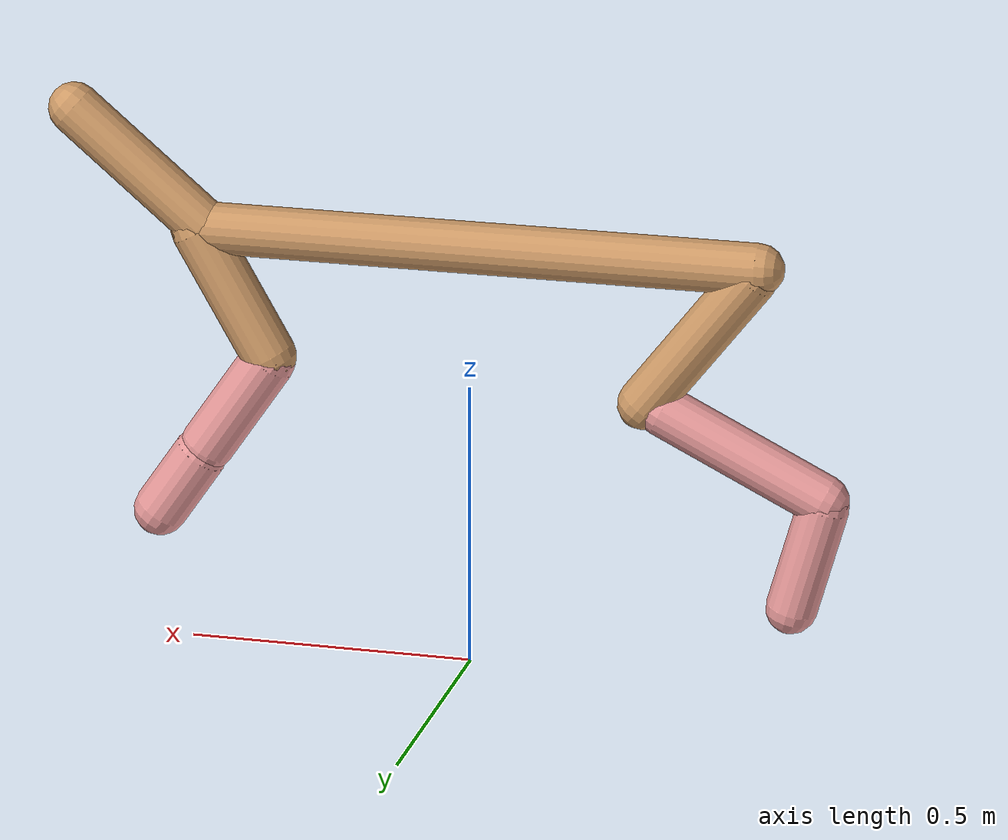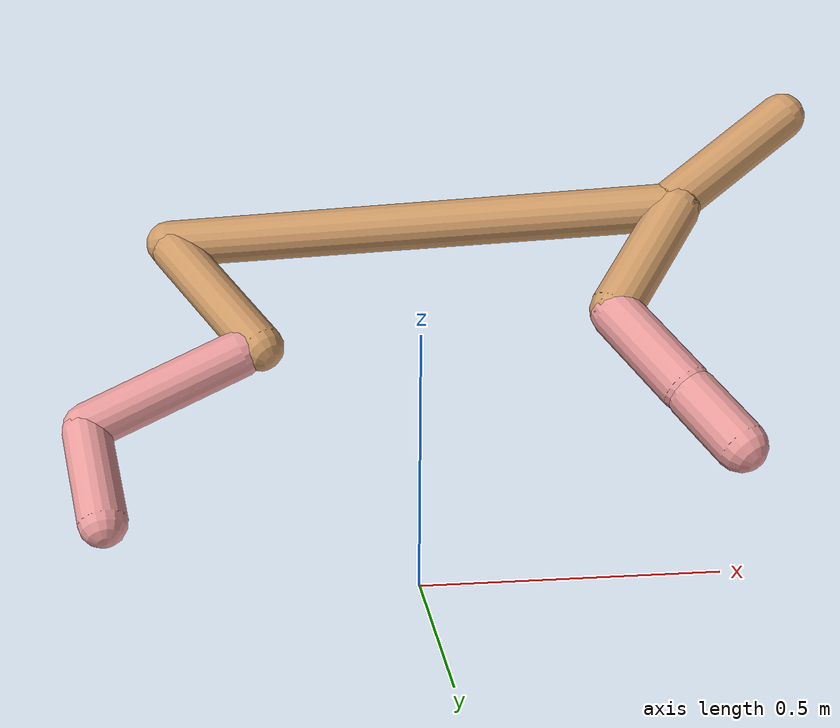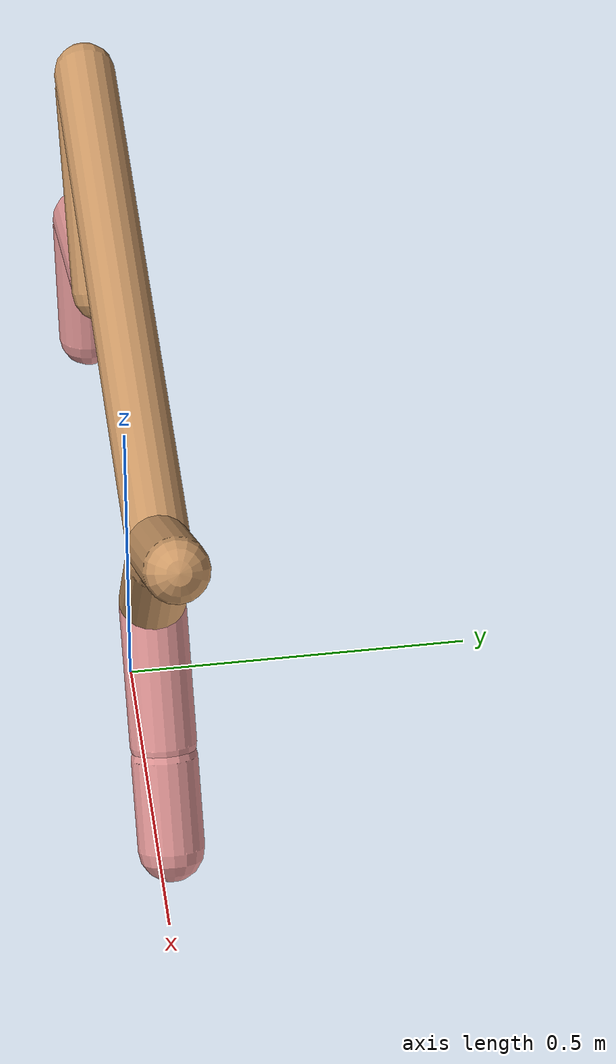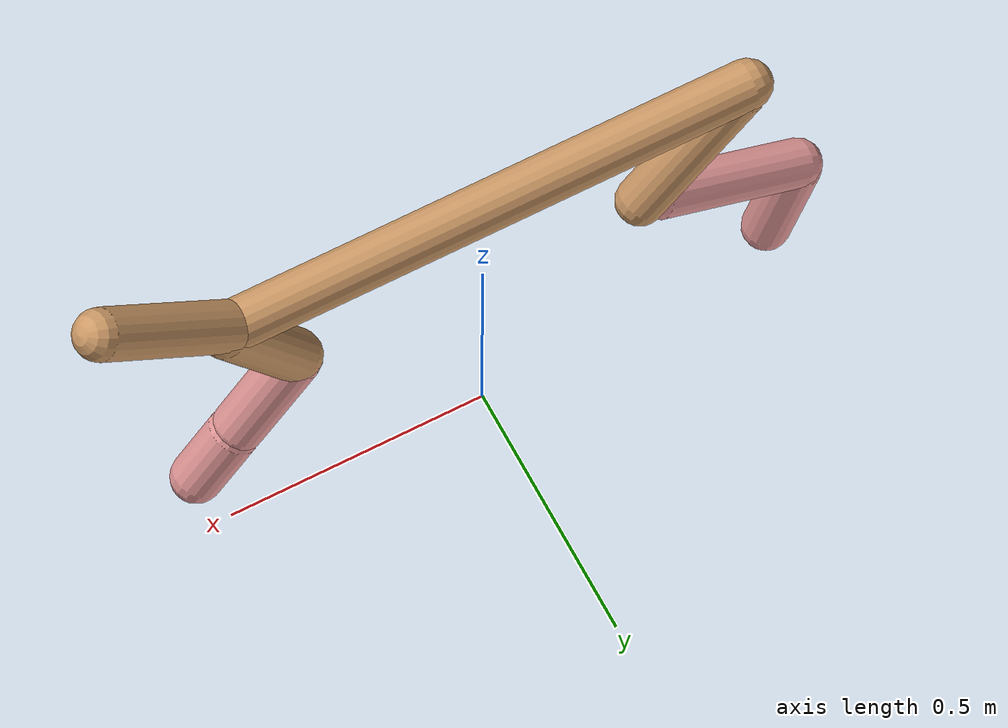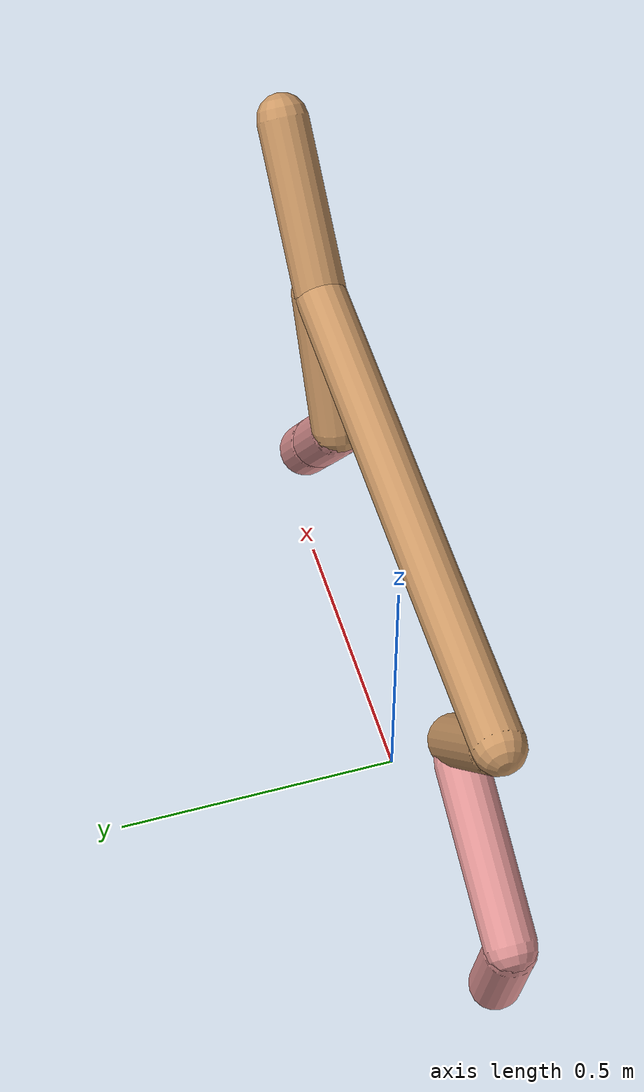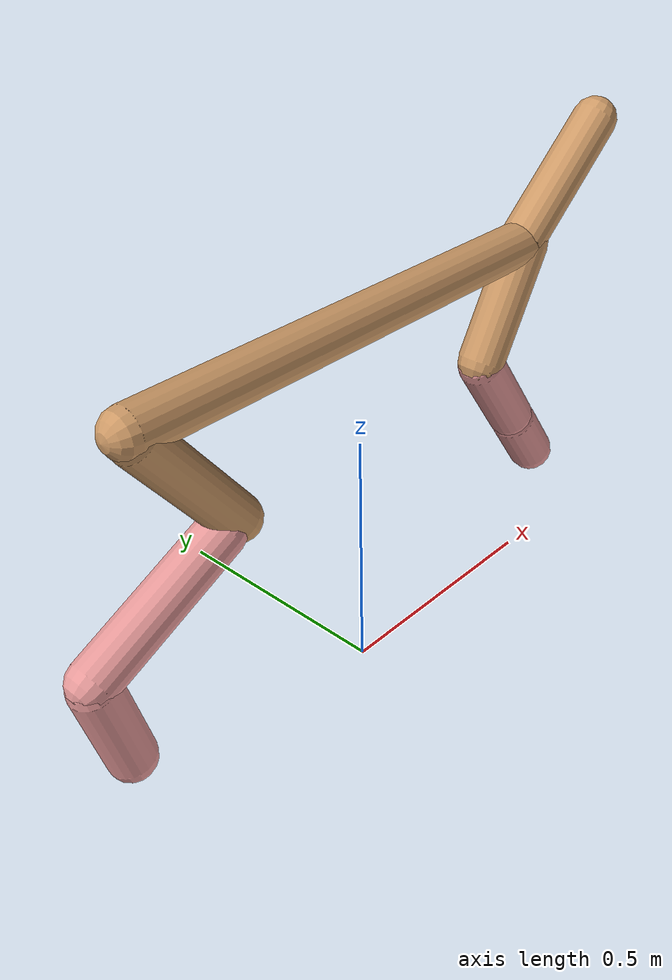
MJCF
<mujoco model="cheetah">
  <compiler angle="radian" coordinate="local" inertiafromgeom="true" settotalmass="14" />
  <default>
    <joint armature=".1" damping=".01" limited="true" solimplimit="0 .8 .03" solreflimit=".02 1" stiffness="8" />
    <geom conaffinity="0" condim="3" contype="1" friction="0.8 .1 .1" rgba="0.8 0.6 .4 1" solimp="0.0 0.8 0.01" solref="0.02 1" />
    <motor ctrllimited="true" ctrlrange="-1 1" />
  </default>
  <size nstack="300000" nuser_geom="1" />
  <option gravity="0 0 -9.81" timestep="0.01" />
  <worldbody>
    <body name="torso" pos="0.0 0.0 0.7520956849247111">
      <joint armature="0" axis="1 0 0" damping="0" limited="false" name="ignorex" pos="0 0 0" stiffness="0" type="slide" />
      <joint armature="0" axis="0 0 1" damping="0" limited="false" name="ignorez" pos="0 0 0" stiffness="0" type="slide" />
      <joint armature="0" axis="0 1 0" damping="0" limited="false" name="ignorey" pos="0 0 0" stiffness="0" type="hinge" />
      <geom fromto="-0.5 0.0 0.0 0.4859368117331311 0.0 0.0" name="torso" size="0.04468071656091142" type="capsule" />
      <geom axisangle="0 1 0 .87" name="head" pos="0.5859368117331311 0.0 0.1" size="0.04532589064685241 0.15" type="capsule" />

      <body name="bthigh" pos="-.5 0 0">
        <joint axis="0 1 0" damping="6" name="bthigh" pos="0 0 0" range="-.52 1.05" stiffness="240" type="hinge" />
        <geom axisangle="0 1 0 -3.8" name="bthigh" pos="0.10390311733508692 0.0 -0.135074052535613" size="0.044784039934695284 0.15140158840176535" type="capsule" />
        <body name="bshin" pos="0.16780623467017383 0.0 -0.260148105071226">
          <joint axis="0 1 0" damping="4.5" name="bshin" pos="0 0 0" range="-.785 .785" stiffness="180" type="hinge" />
          <geom axisangle="0 1 0 -2.03" name="bshin" pos="-0.1459231945504779 0.0 -0.07296159727523895" rgba="0.9 0.6 0.6 1" size="0.044784039934695284 0.15662233282941243" type="capsule" />
          <body name="bfoot" pos="-0.2918463891009558 0.0 -0.1459231945504779">
            <joint axis="0 1 0" damping="3" name="bfoot" pos="0 0 0" range="-.4 .785" stiffness="120" type="hinge" />
            <geom axisangle="0 1 0 -.27" name="bfoot" pos="0.0312261979436213 0.0 -0.10096470668437554" rgba="0.9 0.6 0.6 1" size="0.044784039934695284 0.09814999523976513" type="capsule" />
            <inertial mass="10" />
          </body>
        </body>
      </body>
      <body name="fthigh" pos="0.4859368117331311 0.0 0.0">
        <joint axis="0 1 0" damping="4.5" name="fthigh" pos="0 0 0" range="-1.5 0.8" stiffness="180" type="hinge" />
        <geom axisangle="0 1 0 .52" name="fthigh" pos="-0.06643649957798527 0.0 -0.11389114213368902" size="0.047335998003470145 0.12592775285439708" type="capsule" />
        <body name="fshin" pos="-0.13287299915597053 0.0 -0.22778228426737804">
          <joint axis="0 1 0" damping="3" name="fshin" pos="0 0 0" range="-1.2 1.1" stiffness="120" type="hinge" />
          <geom axisangle="0 1 0 -.6" name="fshin" pos="0.061699866216469605 0.0 -0.08543058399203483" rgba="0.9 0.6 0.6 1" size="0.047335998003470145 0.10036347219974504" type="capsule" />
          <body name="ffoot" pos="0.12339973243293921 0.0 -0.17086116798406967">
            <joint axis="0 1 0" damping="1.5" name="ffoot" pos="0 0 0" range="-3.1 -0.3" stiffness="60" type="hinge" />
            <geom axisangle="0 1 0 -.6" name="ffoot" pos="0.04298717298335263 0.0 -0.06686893575188188" rgba="0.9 0.6 0.6 1" size="0.047335998003470145 0.066277764660209" type="capsule" />
            <inertial mass="10" />
          </body>
        </body>
      </body>
    </body>
  </worldbody>
  <actuator>
    <motor gear="120" joint="bthigh" name="bthigh" />
    <motor gear="90" joint="bshin" name="bshin" />
    <motor gear="60" joint="bfoot" name="bfoot" />
    <motor gear="120" joint="fthigh" name="fthigh" />
    <motor gear="60" joint="fshin" name="fshin" />
    <motor gear="30" joint="ffoot" name="ffoot" />
  </actuator>
</mujoco>
